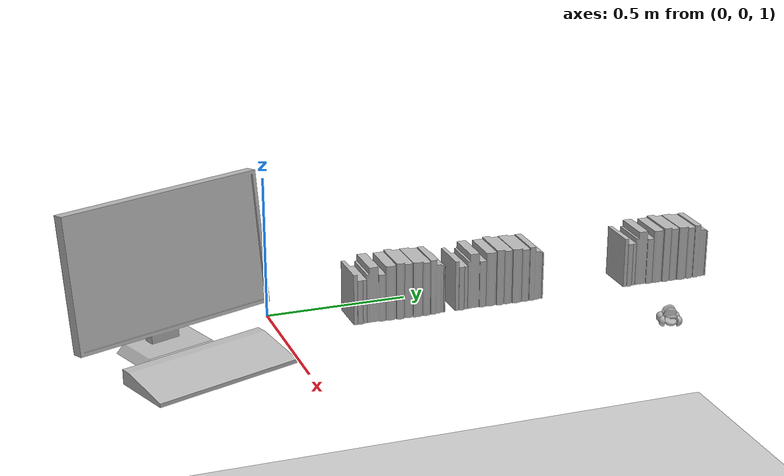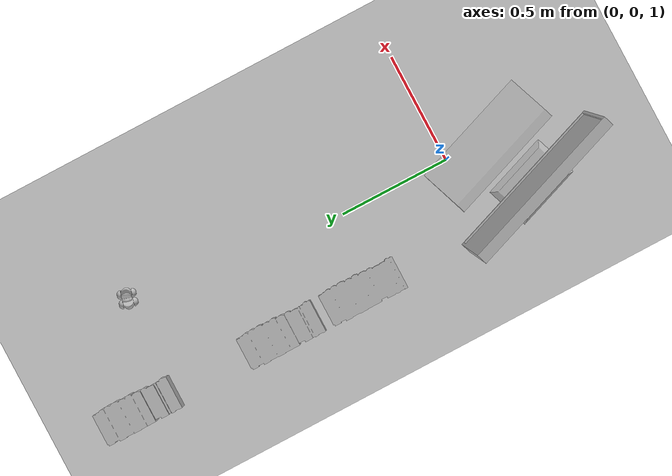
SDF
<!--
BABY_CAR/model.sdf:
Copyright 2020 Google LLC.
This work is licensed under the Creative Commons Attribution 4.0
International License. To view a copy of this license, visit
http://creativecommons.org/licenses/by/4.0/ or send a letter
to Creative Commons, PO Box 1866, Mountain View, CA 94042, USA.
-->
<sdf version="1.6">
 <world name="office">
  <physics name="1ms" type="ignored">
   <max_step_size>0.001</max_step_size>
   <real_time_factor>1.0</real_time_factor>
  </physics>
  <plugin filename="ignition-gazebo-physics-system" name="ignition::gazebo::systems::Physics"/>
  <plugin filename="ignition-gazebo-user-commands-system" name="ignition::gazebo::systems::UserCommands"/>
  <plugin filename="ignition-gazebo-scene-broadcaster-system" name="ignition::gazebo::systems::SceneBroadcaster"/>
  <plugin filename="ignition-gazebo-contact-system" name="ignition::gazebo::systems::Contact"/>
  <plugin filename="libignition-gazebo-sensors-system.so" name="ignition::gazebo::systems::Sensors">
   <render_engine>ogre2</render_engine>
  </plugin>
  <light type="directional" name="sun">
   <pose>0 0 10 0 0 0</pose>
   <diffuse>0.8 0.8 0.8 1</diffuse>
   <specular>0.2 0.2 0.2 1</specular>
   <attenuation>
    <range>1000</range>
    <constant>0.9</constant>
    <linear>0.01</linear>
    <quadratic>0.001</quadratic>
   </attenuation>
   <direction>-0.5 0.1 -0.9</direction>
  </light>
  <model name="ground_plane">
   <static>true</static>
   <link name="link">
    <collision name="collision">
     <geometry><plane><normal>0 0 1</normal><size>100 100</size></plane></geometry>
    </collision>
    <visual name="visual">
     <geometry><plane><normal>0 0 1</normal><size>100 100</size></plane></geometry>
     <material>
      <ambient>0.8 0.8 0.8 1</ambient>
      <diffuse>0.8 0.8 0.8 1</diffuse>
      <specular>0.8 0.8 0.8 1</specular>
     </material>
    </visual>
   </link>
  </model>
  <include>
   <name>Monitor_and_keyboard</name>
   <static>true</static>
   <pose>-0.28 -0.30 0.8 0 0 -2.8</pose>
   <uri>model://MonitorAndKeyboard</uri>
  </include>
  <include>
   <name>Books_1</name>
   <static>true</static>
   <pose>-0.25 0.4 0.8 0 0 1.57079632679</pose>
   <uri>model://books</uri>
  </include>
  <include>
   <name>Books_2</name>
   <static>true</static>
   <pose>-0.25 0.8 0.8 0 0 1.57079632679</pose>
   <uri>model://books</uri>
  </include>
  <include>
   <name>Books_3</name>
   <static>true</static>
   <pose>-0.25 1.5 0.8 0 0 1.57079632679</pose>
   <uri>model://books</uri>
  </include>
  <include>
   <name>toy</name>
   <static>true</static>
   <pose>0.12 1.5 0.8 0 0 1.3</pose>
   <uri>model://BABY_CAR</uri>
  </include>
 </world>
</sdf>

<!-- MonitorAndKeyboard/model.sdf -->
<sdf version="1.6">
  <model name='MonitorAndKeyboard'>
    <link name="body">
      <pose>0 0 0 0 0 0</pose>

      <visual name="visual_monitor">
        <geometry>
          <mesh>
            <uri>model://MonitorAndKeyboard/meshes/monitor.obj</uri>
            <scale>0.20 0.20 0.20</scale>
          </mesh>
        </geometry>
        <pose>0 0 0 0 0 0</pose>
      </visual>

      <collision name="collision_monitor">
        <geometry>
          <mesh>
            <uri>model://MonitorAndKeyboard/meshes/monitor.obj</uri>
            <scale>0.20 0.20 0.20</scale>
          </mesh>
        </geometry>
        <pose>0 0 0 0 0 0</pose>
      </collision>

      <visual name="visual_keyboard">
        <geometry>
          <mesh>
            <uri>model://MonitorAndKeyboard/meshes/keyboard.obj</uri>
            <scale>0.20 0.20 0.20</scale>
          </mesh>
        </geometry>
        <pose>-0.27 0 0 0 0 0</pose>
      </visual>

      <collision name="collision_keyboard">
        <geometry>
          <mesh>
            <uri>model://MonitorAndKeyboard/meshes/keyboard.obj</uri>
            <scale>0.20 0.20 0.20</scale>
          </mesh>
        </geometry>
        <pose>-0.27 0 0 0 0 0</pose>
      </collision>

    </link>
  </model>
</sdf>

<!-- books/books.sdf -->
<sdf version="1.5">
  <model name="books">
    <static>true</static>
    <link name="books_link">
        <collision name="books_collision">
         <geometry>
            <mesh>
                <uri>model://books/meshes/model.dae</uri>
            </mesh>
        </geometry>
      </collision>

      <visual name="books_mesh">
        <cast_shadows>true</cast_shadows>
        <geometry>
            <mesh>
                <uri>model://books/meshes/model.dae</uri>
            </mesh>
        </geometry>
      </visual>
    </link>
  </model>
</sdf>

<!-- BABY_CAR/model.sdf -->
<sdf version="1.6">
  <model name="BABY_CAR">
    <link name="link_0">
      <visual name="visual">
        <geometry>
          <mesh>
            <uri>meshes/model.obj</uri>
          </mesh>
        </geometry>
      </visual>
      <collision name="collision_0">
        <geometry>
          <mesh>
            <uri>meshes/model.obj</uri>
          </mesh>
        </geometry>
      </collision>
    </link>
  </model>
</sdf>
